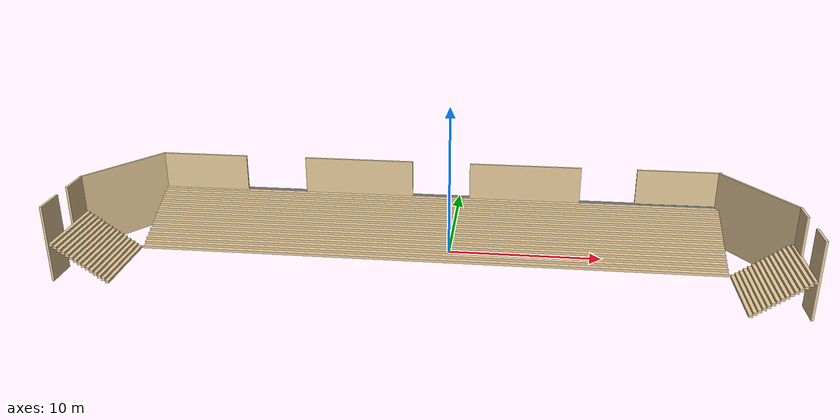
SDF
<?xml version='1.0'?>
<sdf version='1.7'>
  <model name='playground'>
    <pose>-1.37832 -1.5894 0 0 -0 0</pose>
    <link name='Floor_0'>
      <pose>0.02132 5.0789 2.5 0 -0 0</pose>
      <visual name='Floor_0_Visual_0'>
        <pose>-19.1226 0 0.05 0 -0 0</pose>
        <geometry>
          <box>
            <size>0.024505 0.281392 0.1</size>
          </box>
        </geometry>
        <material>
          <script>
            <uri>file://media/materials/scripts/gazebo.material</uri>
            <name>Gazebo/Grey</name>
          </script>
          <ambient>1 1 1 1</ambient>
        </material>
        <meta>
          <layer>1</layer>
        </meta>
      </visual>
      <collision name='Floor_0_Collision_0'>
        <geometry>
          <box>
            <size>0.024505 0.281392 0.1</size>
          </box>
        </geometry>
        <pose>-19.1226 0 0.05 0 -0 0</pose>
      </collision>
      <visual name='Floor_0_Visual_1'>
        <pose>0.012253 0.046116 0.05 0 -0 0</pose>
        <geometry>
          <box>
            <size>38.2452 0.18916 0.1</size>
          </box>
        </geometry>
        <material>
          <script>
            <uri>file://media/materials/scripts/gazebo.material</uri>
            <name>Gazebo/Grey</name>
          </script>
          <ambient>1 1 1 1</ambient>
        </material>
        <meta>
          <layer>1</layer>
        </meta>
      </visual>
      <collision name='Floor_0_Collision_1'>
        <geometry>
          <box>
            <size>38.2452 0.18916 0.1</size>
          </box>
        </geometry>
        <pose>0.012253 0.046116 0.05 0 -0 0</pose>
      </collision>
    </link>
    <link name='Stairs_0'>
      <visual name='Stairs_0_Visual_0'>
        <pose>0.043951 0.097538 0.083333 0 -0 -3.14159</pose>
        <geometry>
          <box>
            <size>38.266 0.3402 0.166667</size>
          </box>
        </geometry>
        <material>
          <script>
            <uri>file://media/materials/scripts/gazebo.material</uri>
            <name>Gazebo/Grey</name>
          </script>
          <ambient>0.921569 0.807843 0.615686 1</ambient>
        </material>
        <meta>
          <layer>0</layer>
        </meta>
      </visual>
      <collision name='Stairs_0_Collision_0'>
        <geometry>
          <box>
            <size>38.266 0.3402 0.166667</size>
          </box>
        </geometry>
        <pose>0.043951 0.097538 0.083333 0 -0 -3.14159</pose>
      </collision>
      <visual name='Stairs_0_Visual_1'>
        <pose>0.043951 0.437738 0.25 0 -0 -3.14159</pose>
        <geometry>
          <box>
            <size>38.266 0.3402 0.166667</size>
          </box>
        </geometry>
        <material>
          <script>
            <uri>file://media/materials/scripts/gazebo.material</uri>
            <name>Gazebo/Grey</name>
          </script>
          <ambient>0.921569 0.807843 0.615686 1</ambient>
        </material>
        <meta>
          <layer>0</layer>
        </meta>
      </visual>
      <collision name='Stairs_0_Collision_1'>
        <geometry>
          <box>
            <size>38.266 0.3402 0.166667</size>
          </box>
        </geometry>
        <pose>0.043951 0.437738 0.25 0 -0 -3.14159</pose>
      </collision>
      <visual name='Stairs_0_Visual_2'>
        <pose>0.043951 0.777938 0.416667 0 -0 -3.14159</pose>
        <geometry>
          <box>
            <size>38.266 0.3402 0.166667</size>
          </box>
        </geometry>
        <material>
          <script>
            <uri>file://media/materials/scripts/gazebo.material</uri>
            <name>Gazebo/Grey</name>
          </script>
          <ambient>0.921569 0.807843 0.615686 1</ambient>
        </material>
        <meta>
          <layer>0</layer>
        </meta>
      </visual>
      <collision name='Stairs_0_Collision_2'>
        <geometry>
          <box>
            <size>38.266 0.3402 0.166667</size>
          </box>
        </geometry>
        <pose>0.043951 0.777938 0.416667 0 -0 -3.14159</pose>
      </collision>
      <visual name='Stairs_0_Visual_3'>
        <pose>0.043951 1.11814 0.583333 0 -0 -3.14159</pose>
        <geometry>
          <box>
            <size>38.266 0.3402 0.166667</size>
          </box>
        </geometry>
        <material>
          <script>
            <uri>file://media/materials/scripts/gazebo.material</uri>
            <name>Gazebo/Grey</name>
          </script>
          <ambient>0.921569 0.807843 0.615686 1</ambient>
        </material>
        <meta>
          <layer>0</layer>
        </meta>
      </visual>
      <collision name='Stairs_0_Collision_3'>
        <geometry>
          <box>
            <size>38.266 0.3402 0.166667</size>
          </box>
        </geometry>
        <pose>0.043951 1.11814 0.583333 0 -0 -3.14159</pose>
      </collision>
      <visual name='Stairs_0_Visual_4'>
        <pose>0.043951 1.45834 0.75 0 -0 -3.14159</pose>
        <geometry>
          <box>
            <size>38.266 0.3402 0.166667</size>
          </box>
        </geometry>
        <material>
          <script>
            <uri>file://media/materials/scripts/gazebo.material</uri>
            <name>Gazebo/Grey</name>
          </script>
          <ambient>0.921569 0.807843 0.615686 1</ambient>
        </material>
        <meta>
          <layer>0</layer>
        </meta>
      </visual>
      <collision name='Stairs_0_Collision_4'>
        <geometry>
          <box>
            <size>38.266 0.3402 0.166667</size>
          </box>
        </geometry>
        <pose>0.043951 1.45834 0.75 0 -0 -3.14159</pose>
      </collision>
      <visual name='Stairs_0_Visual_5'>
        <pose>0.043951 1.79854 0.916667 0 -0 -3.14159</pose>
        <geometry>
          <box>
            <size>38.266 0.3402 0.166667</size>
          </box>
        </geometry>
        <material>
          <script>
            <uri>file://media/materials/scripts/gazebo.material</uri>
            <name>Gazebo/Grey</name>
          </script>
          <ambient>0.921569 0.807843 0.615686 1</ambient>
        </material>
        <meta>
          <layer>0</layer>
        </meta>
      </visual>
      <collision name='Stairs_0_Collision_5'>
        <geometry>
          <box>
            <size>38.266 0.3402 0.166667</size>
          </box>
        </geometry>
        <pose>0.043951 1.79854 0.916667 0 -0 -3.14159</pose>
      </collision>
      <visual name='Stairs_0_Visual_6'>
        <pose>0.043951 2.13874 1.08333 0 -0 -3.14159</pose>
        <geometry>
          <box>
            <size>38.266 0.3402 0.166667</size>
          </box>
        </geometry>
        <material>
          <script>
            <uri>file://media/materials/scripts/gazebo.material</uri>
            <name>Gazebo/Grey</name>
          </script>
          <ambient>0.921569 0.807843 0.615686 1</ambient>
        </material>
        <meta>
          <layer>0</layer>
        </meta>
      </visual>
      <collision name='Stairs_0_Collision_6'>
        <geometry>
          <box>
            <size>38.266 0.3402 0.166667</size>
          </box>
        </geometry>
        <pose>0.043951 2.13874 1.08333 0 -0 -3.14159</pose>
      </collision>
      <visual name='Stairs_0_Visual_7'>
        <pose>0.043951 2.47894 1.25 0 -0 -3.14159</pose>
        <geometry>
          <box>
            <size>38.266 0.3402 0.166667</size>
          </box>
        </geometry>
        <material>
          <script>
            <uri>file://media/materials/scripts/gazebo.material</uri>
            <name>Gazebo/Grey</name>
          </script>
          <ambient>0.921569 0.807843 0.615686 1</ambient>
        </material>
        <meta>
          <layer>0</layer>
        </meta>
      </visual>
      <collision name='Stairs_0_Collision_7'>
        <geometry>
          <box>
            <size>38.266 0.3402 0.166667</size>
          </box>
        </geometry>
        <pose>0.043951 2.47894 1.25 0 -0 -3.14159</pose>
      </collision>
      <visual name='Stairs_0_Visual_8'>
        <pose>0.043951 2.81914 1.41667 0 -0 -3.14159</pose>
        <geometry>
          <box>
            <size>38.266 0.3402 0.166667</size>
          </box>
        </geometry>
        <material>
          <script>
            <uri>file://media/materials/scripts/gazebo.material</uri>
            <name>Gazebo/Grey</name>
          </script>
          <ambient>0.921569 0.807843 0.615686 1</ambient>
        </material>
        <meta>
          <layer>0</layer>
        </meta>
      </visual>
      <collision name='Stairs_0_Collision_8'>
        <geometry>
          <box>
            <size>38.266 0.3402 0.166667</size>
          </box>
        </geometry>
        <pose>0.043951 2.81914 1.41667 0 -0 -3.14159</pose>
      </collision>
      <visual name='Stairs_0_Visual_9'>
        <pose>0.043951 3.15934 1.58333 0 -0 -3.14159</pose>
        <geometry>
          <box>
            <size>38.266 0.3402 0.166667</size>
          </box>
        </geometry>
        <material>
          <script>
            <uri>file://media/materials/scripts/gazebo.material</uri>
            <name>Gazebo/Grey</name>
          </script>
          <ambient>0.921569 0.807843 0.615686 1</ambient>
        </material>
        <meta>
          <layer>0</layer>
        </meta>
      </visual>
      <collision name='Stairs_0_Collision_9'>
        <geometry>
          <box>
            <size>38.266 0.3402 0.166667</size>
          </box>
        </geometry>
        <pose>0.043951 3.15934 1.58333 0 -0 -3.14159</pose>
      </collision>
      <visual name='Stairs_0_Visual_10'>
        <pose>0.043951 3.49954 1.75 0 -0 -3.14159</pose>
        <geometry>
          <box>
            <size>38.266 0.3402 0.166667</size>
          </box>
        </geometry>
        <material>
          <script>
            <uri>file://media/materials/scripts/gazebo.material</uri>
            <name>Gazebo/Grey</name>
          </script>
          <ambient>0.921569 0.807843 0.615686 1</ambient>
        </material>
        <meta>
          <layer>0</layer>
        </meta>
      </visual>
      <collision name='Stairs_0_Collision_10'>
        <geometry>
          <box>
            <size>38.266 0.3402 0.166667</size>
          </box>
        </geometry>
        <pose>0.043951 3.49954 1.75 0 -0 -3.14159</pose>
      </collision>
      <visual name='Stairs_0_Visual_11'>
        <pose>0.043951 3.83974 1.91667 0 -0 -3.14159</pose>
        <geometry>
          <box>
            <size>38.266 0.3402 0.166667</size>
          </box>
        </geometry>
        <material>
          <script>
            <uri>file://media/materials/scripts/gazebo.material</uri>
            <name>Gazebo/Grey</name>
          </script>
          <ambient>0.921569 0.807843 0.615686 1</ambient>
        </material>
        <meta>
          <layer>0</layer>
        </meta>
      </visual>
      <collision name='Stairs_0_Collision_11'>
        <geometry>
          <box>
            <size>38.266 0.3402 0.166667</size>
          </box>
        </geometry>
        <pose>0.043951 3.83974 1.91667 0 -0 -3.14159</pose>
      </collision>
      <visual name='Stairs_0_Visual_12'>
        <pose>0.043951 4.17994 2.08333 0 -0 -3.14159</pose>
        <geometry>
          <box>
            <size>38.266 0.3402 0.166667</size>
          </box>
        </geometry>
        <material>
          <script>
            <uri>file://media/materials/scripts/gazebo.material</uri>
            <name>Gazebo/Grey</name>
          </script>
          <ambient>0.921569 0.807843 0.615686 1</ambient>
        </material>
        <meta>
          <layer>0</layer>
        </meta>
      </visual>
      <collision name='Stairs_0_Collision_12'>
        <geometry>
          <box>
            <size>38.266 0.3402 0.166667</size>
          </box>
        </geometry>
        <pose>0.043951 4.17994 2.08333 0 -0 -3.14159</pose>
      </collision>
      <visual name='Stairs_0_Visual_13'>
        <pose>0.043951 4.52014 2.25 0 -0 -3.14159</pose>
        <geometry>
          <box>
            <size>38.266 0.3402 0.166667</size>
          </box>
        </geometry>
        <material>
          <script>
            <uri>file://media/materials/scripts/gazebo.material</uri>
            <name>Gazebo/Grey</name>
          </script>
          <ambient>0.921569 0.807843 0.615686 1</ambient>
        </material>
        <meta>
          <layer>0</layer>
        </meta>
      </visual>
      <collision name='Stairs_0_Collision_13'>
        <geometry>
          <box>
            <size>38.266 0.3402 0.166667</size>
          </box>
        </geometry>
        <pose>0.043951 4.52014 2.25 0 -0 -3.14159</pose>
      </collision>
      <visual name='Stairs_0_Visual_14'>
        <pose>0.043951 4.86034 2.41667 0 -0 -3.14159</pose>
        <geometry>
          <box>
            <size>38.266 0.3402 0.166667</size>
          </box>
        </geometry>
        <material>
          <script>
            <uri>file://media/materials/scripts/gazebo.material</uri>
            <name>Gazebo/Grey</name>
          </script>
          <ambient>0.921569 0.807843 0.615686 1</ambient>
        </material>
        <meta>
          <layer>0</layer>
        </meta>
      </visual>
      <collision name='Stairs_0_Collision_14'>
        <geometry>
          <box>
            <size>38.266 0.3402 0.166667</size>
          </box>
        </geometry>
        <pose>0.043951 4.86034 2.41667 0 -0 -3.14159</pose>
      </collision>
    </link>
    <link name='Stairs_1'>
      <visual name='Stairs_1_Visual_0'>
        <pose>-19.291 -2.59066 0.083333 0 -0 -1.5708</pose>
        <geometry>
          <box>
            <size>5.109 0.233333 0.166667</size>
          </box>
        </geometry>
        <material>
          <script>
            <uri>file://media/materials/scripts/gazebo.material</uri>
            <name>Gazebo/Grey</name>
          </script>
          <ambient>0.921569 0.807843 0.615686 1</ambient>
        </material>
        <meta>
          <layer>0</layer>
        </meta>
      </visual>
      <collision name='Stairs_1_Collision_0'>
        <geometry>
          <box>
            <size>5.109 0.233333 0.166667</size>
          </box>
        </geometry>
        <pose>-19.291 -2.59066 0.083333 0 -0 -1.5708</pose>
      </collision>
      <visual name='Stairs_1_Visual_1'>
        <pose>-19.5243 -2.59066 0.25 0 -0 -1.5708</pose>
        <geometry>
          <box>
            <size>5.109 0.233333 0.166667</size>
          </box>
        </geometry>
        <material>
          <script>
            <uri>file://media/materials/scripts/gazebo.material</uri>
            <name>Gazebo/Grey</name>
          </script>
          <ambient>0.921569 0.807843 0.615686 1</ambient>
        </material>
        <meta>
          <layer>0</layer>
        </meta>
      </visual>
      <collision name='Stairs_1_Collision_1'>
        <geometry>
          <box>
            <size>5.109 0.233333 0.166667</size>
          </box>
        </geometry>
        <pose>-19.5243 -2.59066 0.25 0 -0 -1.5708</pose>
      </collision>
      <visual name='Stairs_1_Visual_2'>
        <pose>-19.7576 -2.59066 0.416667 0 -0 -1.5708</pose>
        <geometry>
          <box>
            <size>5.109 0.233333 0.166667</size>
          </box>
        </geometry>
        <material>
          <script>
            <uri>file://media/materials/scripts/gazebo.material</uri>
            <name>Gazebo/Grey</name>
          </script>
          <ambient>0.921569 0.807843 0.615686 1</ambient>
        </material>
        <meta>
          <layer>0</layer>
        </meta>
      </visual>
      <collision name='Stairs_1_Collision_2'>
        <geometry>
          <box>
            <size>5.109 0.233333 0.166667</size>
          </box>
        </geometry>
        <pose>-19.7576 -2.59066 0.416667 0 -0 -1.5708</pose>
      </collision>
      <visual name='Stairs_1_Visual_3'>
        <pose>-19.991 -2.59066 0.583333 0 -0 -1.5708</pose>
        <geometry>
          <box>
            <size>5.109 0.233333 0.166667</size>
          </box>
        </geometry>
        <material>
          <script>
            <uri>file://media/materials/scripts/gazebo.material</uri>
            <name>Gazebo/Grey</name>
          </script>
          <ambient>0.921569 0.807843 0.615686 1</ambient>
        </material>
        <meta>
          <layer>0</layer>
        </meta>
      </visual>
      <collision name='Stairs_1_Collision_3'>
        <geometry>
          <box>
            <size>5.109 0.233333 0.166667</size>
          </box>
        </geometry>
        <pose>-19.991 -2.59066 0.583333 0 -0 -1.5708</pose>
      </collision>
      <visual name='Stairs_1_Visual_4'>
        <pose>-20.2243 -2.59066 0.75 0 -0 -1.5708</pose>
        <geometry>
          <box>
            <size>5.109 0.233333 0.166667</size>
          </box>
        </geometry>
        <material>
          <script>
            <uri>file://media/materials/scripts/gazebo.material</uri>
            <name>Gazebo/Grey</name>
          </script>
          <ambient>0.921569 0.807843 0.615686 1</ambient>
        </material>
        <meta>
          <layer>0</layer>
        </meta>
      </visual>
      <collision name='Stairs_1_Collision_4'>
        <geometry>
          <box>
            <size>5.109 0.233333 0.166667</size>
          </box>
        </geometry>
        <pose>-20.2243 -2.59066 0.75 0 -0 -1.5708</pose>
      </collision>
      <visual name='Stairs_1_Visual_5'>
        <pose>-20.4576 -2.59066 0.916667 0 -0 -1.5708</pose>
        <geometry>
          <box>
            <size>5.109 0.233333 0.166667</size>
          </box>
        </geometry>
        <material>
          <script>
            <uri>file://media/materials/scripts/gazebo.material</uri>
            <name>Gazebo/Grey</name>
          </script>
          <ambient>0.921569 0.807843 0.615686 1</ambient>
        </material>
        <meta>
          <layer>0</layer>
        </meta>
      </visual>
      <collision name='Stairs_1_Collision_5'>
        <geometry>
          <box>
            <size>5.109 0.233333 0.166667</size>
          </box>
        </geometry>
        <pose>-20.4576 -2.59066 0.916667 0 -0 -1.5708</pose>
      </collision>
      <visual name='Stairs_1_Visual_6'>
        <pose>-20.691 -2.59066 1.08333 0 -0 -1.5708</pose>
        <geometry>
          <box>
            <size>5.109 0.233333 0.166667</size>
          </box>
        </geometry>
        <material>
          <script>
            <uri>file://media/materials/scripts/gazebo.material</uri>
            <name>Gazebo/Grey</name>
          </script>
          <ambient>0.921569 0.807843 0.615686 1</ambient>
        </material>
        <meta>
          <layer>0</layer>
        </meta>
      </visual>
      <collision name='Stairs_1_Collision_6'>
        <geometry>
          <box>
            <size>5.109 0.233333 0.166667</size>
          </box>
        </geometry>
        <pose>-20.691 -2.59066 1.08333 0 -0 -1.5708</pose>
      </collision>
      <visual name='Stairs_1_Visual_7'>
        <pose>-20.9243 -2.59066 1.25 0 -0 -1.5708</pose>
        <geometry>
          <box>
            <size>5.109 0.233333 0.166667</size>
          </box>
        </geometry>
        <material>
          <script>
            <uri>file://media/materials/scripts/gazebo.material</uri>
            <name>Gazebo/Grey</name>
          </script>
          <ambient>0.921569 0.807843 0.615686 1</ambient>
        </material>
        <meta>
          <layer>0</layer>
        </meta>
      </visual>
      <collision name='Stairs_1_Collision_7'>
        <geometry>
          <box>
            <size>5.109 0.233333 0.166667</size>
          </box>
        </geometry>
        <pose>-20.9243 -2.59066 1.25 0 -0 -1.5708</pose>
      </collision>
      <visual name='Stairs_1_Visual_8'>
        <pose>-21.1576 -2.59066 1.41667 0 -0 -1.5708</pose>
        <geometry>
          <box>
            <size>5.109 0.233333 0.166667</size>
          </box>
        </geometry>
        <material>
          <script>
            <uri>file://media/materials/scripts/gazebo.material</uri>
            <name>Gazebo/Grey</name>
          </script>
          <ambient>0.921569 0.807843 0.615686 1</ambient>
        </material>
        <meta>
          <layer>0</layer>
        </meta>
      </visual>
      <collision name='Stairs_1_Collision_8'>
        <geometry>
          <box>
            <size>5.109 0.233333 0.166667</size>
          </box>
        </geometry>
        <pose>-21.1576 -2.59066 1.41667 0 -0 -1.5708</pose>
      </collision>
      <visual name='Stairs_1_Visual_9'>
        <pose>-21.391 -2.59066 1.58333 0 -0 -1.5708</pose>
        <geometry>
          <box>
            <size>5.109 0.233333 0.166667</size>
          </box>
        </geometry>
        <material>
          <script>
            <uri>file://media/materials/scripts/gazebo.material</uri>
            <name>Gazebo/Grey</name>
          </script>
          <ambient>0.921569 0.807843 0.615686 1</ambient>
        </material>
        <meta>
          <layer>0</layer>
        </meta>
      </visual>
      <collision name='Stairs_1_Collision_9'>
        <geometry>
          <box>
            <size>5.109 0.233333 0.166667</size>
          </box>
        </geometry>
        <pose>-21.391 -2.59066 1.58333 0 -0 -1.5708</pose>
      </collision>
      <visual name='Stairs_1_Visual_10'>
        <pose>-21.6243 -2.59066 1.75 0 -0 -1.5708</pose>
        <geometry>
          <box>
            <size>5.109 0.233333 0.166667</size>
          </box>
        </geometry>
        <material>
          <script>
            <uri>file://media/materials/scripts/gazebo.material</uri>
            <name>Gazebo/Grey</name>
          </script>
          <ambient>0.921569 0.807843 0.615686 1</ambient>
        </material>
        <meta>
          <layer>0</layer>
        </meta>
      </visual>
      <collision name='Stairs_1_Collision_10'>
        <geometry>
          <box>
            <size>5.109 0.233333 0.166667</size>
          </box>
        </geometry>
        <pose>-21.6243 -2.59066 1.75 0 -0 -1.5708</pose>
      </collision>
      <visual name='Stairs_1_Visual_11'>
        <pose>-21.8576 -2.59066 1.91667 0 -0 -1.5708</pose>
        <geometry>
          <box>
            <size>5.109 0.233333 0.166667</size>
          </box>
        </geometry>
        <material>
          <script>
            <uri>file://media/materials/scripts/gazebo.material</uri>
            <name>Gazebo/Grey</name>
          </script>
          <ambient>0.921569 0.807843 0.615686 1</ambient>
        </material>
        <meta>
          <layer>0</layer>
        </meta>
      </visual>
      <collision name='Stairs_1_Collision_11'>
        <geometry>
          <box>
            <size>5.109 0.233333 0.166667</size>
          </box>
        </geometry>
        <pose>-21.8576 -2.59066 1.91667 0 -0 -1.5708</pose>
      </collision>
      <visual name='Stairs_1_Visual_12'>
        <pose>-22.091 -2.59066 2.08333 0 -0 -1.5708</pose>
        <geometry>
          <box>
            <size>5.109 0.233333 0.166667</size>
          </box>
        </geometry>
        <material>
          <script>
            <uri>file://media/materials/scripts/gazebo.material</uri>
            <name>Gazebo/Grey</name>
          </script>
          <ambient>0.921569 0.807843 0.615686 1</ambient>
        </material>
        <meta>
          <layer>0</layer>
        </meta>
      </visual>
      <collision name='Stairs_1_Collision_12'>
        <geometry>
          <box>
            <size>5.109 0.233333 0.166667</size>
          </box>
        </geometry>
        <pose>-22.091 -2.59066 2.08333 0 -0 -1.5708</pose>
      </collision>
      <visual name='Stairs_1_Visual_13'>
        <pose>-22.3243 -2.59066 2.25 0 -0 -1.5708</pose>
        <geometry>
          <box>
            <size>5.109 0.233333 0.166667</size>
          </box>
        </geometry>
        <material>
          <script>
            <uri>file://media/materials/scripts/gazebo.material</uri>
            <name>Gazebo/Grey</name>
          </script>
          <ambient>0.921569 0.807843 0.615686 1</ambient>
        </material>
        <meta>
          <layer>0</layer>
        </meta>
      </visual>
      <collision name='Stairs_1_Collision_13'>
        <geometry>
          <box>
            <size>5.109 0.233333 0.166667</size>
          </box>
        </geometry>
        <pose>-22.3243 -2.59066 2.25 0 -0 -1.5708</pose>
      </collision>
      <visual name='Stairs_1_Visual_14'>
        <pose>-22.5576 -2.59066 2.41667 0 -0 -1.5708</pose>
        <geometry>
          <box>
            <size>5.109 0.233333 0.166667</size>
          </box>
        </geometry>
        <material>
          <script>
            <uri>file://media/materials/scripts/gazebo.material</uri>
            <name>Gazebo/Grey</name>
          </script>
          <ambient>0.921569 0.807843 0.615686 1</ambient>
        </material>
        <meta>
          <layer>0</layer>
        </meta>
      </visual>
      <collision name='Stairs_1_Collision_14'>
        <geometry>
          <box>
            <size>5.109 0.233333 0.166667</size>
          </box>
        </geometry>
        <pose>-22.5576 -2.59066 2.41667 0 -0 -1.5708</pose>
      </collision>
    </link>
    <link name='Stairs_2'>
      <visual name='Stairs_2_Visual_0'>
        <pose>19.3588 -2.57805 0.083333 0 -0 1.5708</pose>
        <geometry>
          <box>
            <size>5.03008 0.233333 0.166667</size>
          </box>
        </geometry>
        <material>
          <script>
            <uri>file://media/materials/scripts/gazebo.material</uri>
            <name>Gazebo/Grey</name>
          </script>
          <ambient>0.921569 0.807843 0.615686 1</ambient>
        </material>
        <meta>
          <layer>0</layer>
        </meta>
      </visual>
      <collision name='Stairs_2_Collision_0'>
        <geometry>
          <box>
            <size>5.03008 0.233333 0.166667</size>
          </box>
        </geometry>
        <pose>19.3588 -2.57805 0.083333 0 -0 1.5708</pose>
      </collision>
      <visual name='Stairs_2_Visual_1'>
        <pose>19.5921 -2.57805 0.25 0 -0 1.5708</pose>
        <geometry>
          <box>
            <size>5.03008 0.233333 0.166667</size>
          </box>
        </geometry>
        <material>
          <script>
            <uri>file://media/materials/scripts/gazebo.material</uri>
            <name>Gazebo/Grey</name>
          </script>
          <ambient>0.921569 0.807843 0.615686 1</ambient>
        </material>
        <meta>
          <layer>0</layer>
        </meta>
      </visual>
      <collision name='Stairs_2_Collision_1'>
        <geometry>
          <box>
            <size>5.03008 0.233333 0.166667</size>
          </box>
        </geometry>
        <pose>19.5921 -2.57805 0.25 0 -0 1.5708</pose>
      </collision>
      <visual name='Stairs_2_Visual_2'>
        <pose>19.8255 -2.57805 0.416667 0 -0 1.5708</pose>
        <geometry>
          <box>
            <size>5.03008 0.233333 0.166667</size>
          </box>
        </geometry>
        <material>
          <script>
            <uri>file://media/materials/scripts/gazebo.material</uri>
            <name>Gazebo/Grey</name>
          </script>
          <ambient>0.921569 0.807843 0.615686 1</ambient>
        </material>
        <meta>
          <layer>0</layer>
        </meta>
      </visual>
      <collision name='Stairs_2_Collision_2'>
        <geometry>
          <box>
            <size>5.03008 0.233333 0.166667</size>
          </box>
        </geometry>
        <pose>19.8255 -2.57805 0.416667 0 -0 1.5708</pose>
      </collision>
      <visual name='Stairs_2_Visual_3'>
        <pose>20.0588 -2.57805 0.583333 0 -0 1.5708</pose>
        <geometry>
          <box>
            <size>5.03008 0.233333 0.166667</size>
          </box>
        </geometry>
        <material>
          <script>
            <uri>file://media/materials/scripts/gazebo.material</uri>
            <name>Gazebo/Grey</name>
          </script>
          <ambient>0.921569 0.807843 0.615686 1</ambient>
        </material>
        <meta>
          <layer>0</layer>
        </meta>
      </visual>
      <collision name='Stairs_2_Collision_3'>
        <geometry>
          <box>
            <size>5.03008 0.233333 0.166667</size>
          </box>
        </geometry>
        <pose>20.0588 -2.57805 0.583333 0 -0 1.5708</pose>
      </collision>
      <visual name='Stairs_2_Visual_4'>
        <pose>20.2921 -2.57805 0.75 0 -0 1.5708</pose>
        <geometry>
          <box>
            <size>5.03008 0.233333 0.166667</size>
          </box>
        </geometry>
        <material>
          <script>
            <uri>file://media/materials/scripts/gazebo.material</uri>
            <name>Gazebo/Grey</name>
          </script>
          <ambient>0.921569 0.807843 0.615686 1</ambient>
        </material>
        <meta>
          <layer>0</layer>
        </meta>
      </visual>
      <collision name='Stairs_2_Collision_4'>
        <geometry>
          <box>
            <size>5.03008 0.233333 0.166667</size>
          </box>
        </geometry>
        <pose>20.2921 -2.57805 0.75 0 -0 1.5708</pose>
      </collision>
      <visual name='Stairs_2_Visual_5'>
        <pose>20.5255 -2.57805 0.916667 0 -0 1.5708</pose>
        <geometry>
          <box>
            <size>5.03008 0.233333 0.166667</size>
          </box>
        </geometry>
        <material>
          <script>
            <uri>file://media/materials/scripts/gazebo.material</uri>
            <name>Gazebo/Grey</name>
          </script>
          <ambient>0.921569 0.807843 0.615686 1</ambient>
        </material>
        <meta>
          <layer>0</layer>
        </meta>
      </visual>
      <collision name='Stairs_2_Collision_5'>
        <geometry>
          <box>
            <size>5.03008 0.233333 0.166667</size>
          </box>
        </geometry>
        <pose>20.5255 -2.57805 0.916667 0 -0 1.5708</pose>
      </collision>
      <visual name='Stairs_2_Visual_6'>
        <pose>20.7588 -2.57805 1.08333 0 -0 1.5708</pose>
        <geometry>
          <box>
            <size>5.03008 0.233333 0.166667</size>
          </box>
        </geometry>
        <material>
          <script>
            <uri>file://media/materials/scripts/gazebo.material</uri>
            <name>Gazebo/Grey</name>
          </script>
          <ambient>0.921569 0.807843 0.615686 1</ambient>
        </material>
        <meta>
          <layer>0</layer>
        </meta>
      </visual>
      <collision name='Stairs_2_Collision_6'>
        <geometry>
          <box>
            <size>5.03008 0.233333 0.166667</size>
          </box>
        </geometry>
        <pose>20.7588 -2.57805 1.08333 0 -0 1.5708</pose>
      </collision>
      <visual name='Stairs_2_Visual_7'>
        <pose>20.9921 -2.57805 1.25 0 -0 1.5708</pose>
        <geometry>
          <box>
            <size>5.03008 0.233333 0.166667</size>
          </box>
        </geometry>
        <material>
          <script>
            <uri>file://media/materials/scripts/gazebo.material</uri>
            <name>Gazebo/Grey</name>
          </script>
          <ambient>0.921569 0.807843 0.615686 1</ambient>
        </material>
        <meta>
          <layer>0</layer>
        </meta>
      </visual>
      <collision name='Stairs_2_Collision_7'>
        <geometry>
          <box>
            <size>5.03008 0.233333 0.166667</size>
          </box>
        </geometry>
        <pose>20.9921 -2.57805 1.25 0 -0 1.5708</pose>
      </collision>
      <visual name='Stairs_2_Visual_8'>
        <pose>21.2255 -2.57805 1.41667 0 -0 1.5708</pose>
        <geometry>
          <box>
            <size>5.03008 0.233333 0.166667</size>
          </box>
        </geometry>
        <material>
          <script>
            <uri>file://media/materials/scripts/gazebo.material</uri>
            <name>Gazebo/Grey</name>
          </script>
          <ambient>0.921569 0.807843 0.615686 1</ambient>
        </material>
        <meta>
          <layer>0</layer>
        </meta>
      </visual>
      <collision name='Stairs_2_Collision_8'>
        <geometry>
          <box>
            <size>5.03008 0.233333 0.166667</size>
          </box>
        </geometry>
        <pose>21.2255 -2.57805 1.41667 0 -0 1.5708</pose>
      </collision>
      <visual name='Stairs_2_Visual_9'>
        <pose>21.4588 -2.57805 1.58333 0 -0 1.5708</pose>
        <geometry>
          <box>
            <size>5.03008 0.233333 0.166667</size>
          </box>
        </geometry>
        <material>
          <script>
            <uri>file://media/materials/scripts/gazebo.material</uri>
            <name>Gazebo/Grey</name>
          </script>
          <ambient>0.921569 0.807843 0.615686 1</ambient>
        </material>
        <meta>
          <layer>0</layer>
        </meta>
      </visual>
      <collision name='Stairs_2_Collision_9'>
        <geometry>
          <box>
            <size>5.03008 0.233333 0.166667</size>
          </box>
        </geometry>
        <pose>21.4588 -2.57805 1.58333 0 -0 1.5708</pose>
      </collision>
      <visual name='Stairs_2_Visual_10'>
        <pose>21.6921 -2.57805 1.75 0 -0 1.5708</pose>
        <geometry>
          <box>
            <size>5.03008 0.233333 0.166667</size>
          </box>
        </geometry>
        <material>
          <script>
            <uri>file://media/materials/scripts/gazebo.material</uri>
            <name>Gazebo/Grey</name>
          </script>
          <ambient>0.921569 0.807843 0.615686 1</ambient>
        </material>
        <meta>
          <layer>0</layer>
        </meta>
      </visual>
      <collision name='Stairs_2_Collision_10'>
        <geometry>
          <box>
            <size>5.03008 0.233333 0.166667</size>
          </box>
        </geometry>
        <pose>21.6921 -2.57805 1.75 0 -0 1.5708</pose>
      </collision>
      <visual name='Stairs_2_Visual_11'>
        <pose>21.9255 -2.57805 1.91667 0 -0 1.5708</pose>
        <geometry>
          <box>
            <size>5.03008 0.233333 0.166667</size>
          </box>
        </geometry>
        <material>
          <script>
            <uri>file://media/materials/scripts/gazebo.material</uri>
            <name>Gazebo/Grey</name>
          </script>
          <ambient>0.921569 0.807843 0.615686 1</ambient>
        </material>
        <meta>
          <layer>0</layer>
        </meta>
      </visual>
      <collision name='Stairs_2_Collision_11'>
        <geometry>
          <box>
            <size>5.03008 0.233333 0.166667</size>
          </box>
        </geometry>
        <pose>21.9255 -2.57805 1.91667 0 -0 1.5708</pose>
      </collision>
      <visual name='Stairs_2_Visual_12'>
        <pose>22.1588 -2.57805 2.08333 0 -0 1.5708</pose>
        <geometry>
          <box>
            <size>5.03008 0.233333 0.166667</size>
          </box>
        </geometry>
        <material>
          <script>
            <uri>file://media/materials/scripts/gazebo.material</uri>
            <name>Gazebo/Grey</name>
          </script>
          <ambient>0.921569 0.807843 0.615686 1</ambient>
        </material>
        <meta>
          <layer>0</layer>
        </meta>
      </visual>
      <collision name='Stairs_2_Collision_12'>
        <geometry>
          <box>
            <size>5.03008 0.233333 0.166667</size>
          </box>
        </geometry>
        <pose>22.1588 -2.57805 2.08333 0 -0 1.5708</pose>
      </collision>
      <visual name='Stairs_2_Visual_13'>
        <pose>22.3921 -2.57805 2.25 0 -0 1.5708</pose>
        <geometry>
          <box>
            <size>5.03008 0.233333 0.166667</size>
          </box>
        </geometry>
        <material>
          <script>
            <uri>file://media/materials/scripts/gazebo.material</uri>
            <name>Gazebo/Grey</name>
          </script>
          <ambient>0.921569 0.807843 0.615686 1</ambient>
        </material>
        <meta>
          <layer>0</layer>
        </meta>
      </visual>
      <collision name='Stairs_2_Collision_13'>
        <geometry>
          <box>
            <size>5.03008 0.233333 0.166667</size>
          </box>
        </geometry>
        <pose>22.3921 -2.57805 2.25 0 -0 1.5708</pose>
      </collision>
      <visual name='Stairs_2_Visual_14'>
        <pose>22.6255 -2.57805 2.41667 0 -0 1.5708</pose>
        <geometry>
          <box>
            <size>5.03008 0.233333 0.166667</size>
          </box>
        </geometry>
        <material>
          <script>
            <uri>file://media/materials/scripts/gazebo.material</uri>
            <name>Gazebo/Grey</name>
          </script>
          <ambient>0.921569 0.807843 0.615686 1</ambient>
        </material>
        <meta>
          <layer>0</layer>
        </meta>
      </visual>
      <collision name='Stairs_2_Collision_14'>
        <geometry>
          <box>
            <size>5.03008 0.233333 0.166667</size>
          </box>
        </geometry>
        <pose>22.6255 -2.57805 2.41667 0 -0 1.5708</pose>
      </collision>
    </link>
    <link name='Wall_0'>
      <collision name='Wall_0_Collision'>
        <geometry>
          <box>
            <size>38.2144 0.15 2.5</size>
          </box>
        </geometry>
        <pose>0 0 1.25 0 -0 0</pose>
      </collision>
      <visual name='Wall_0_Visual'>
        <pose>0 0 1.25 0 -0 0</pose>
        <geometry>
          <box>
            <size>38.2144 0.15 2.5</size>
          </box>
        </geometry>
        <material>
          <script>
            <uri>file://media/materials/scripts/gazebo.material</uri>
            <name>Gazebo/Grey</name>
          </script>
          <ambient>0.921569 0.807843 0.615686 1</ambient>
        </material>
        <meta>
          <layer>0</layer>
        </meta>
      </visual>
      <pose>0.00432 5.0434 0 0 -0 0</pose>
    </link>
    <link name='Wall_11'>
      <collision name='Wall_11_Collision'>
        <geometry>
          <box>
            <size>7.5 0.15 2.5</size>
          </box>
        </geometry>
        <pose>0 0 1.25 0 -0 0</pose>
      </collision>
      <visual name='Wall_11_Visual'>
        <pose>0 0 1.25 0 -0 0</pose>
        <geometry>
          <box>
            <size>7.5 0.15 2.5</size>
          </box>
        </geometry>
        <material>
          <script>
            <uri>file://media/materials/scripts/gazebo.material</uri>
            <name>Gazebo/Grey</name>
          </script>
          <ambient>0.921569 0.807843 0.615686 1</ambient>
        </material>
        <meta>
          <layer>1</layer>
        </meta>
      </visual>
      <pose>-5.19568 5.0904 2.5 0 -0 0</pose>
    </link>
    <link name='Wall_13'>
      <collision name='Wall_13_Collision'>
        <geometry>
          <box>
            <size>7.5 0.15 2.5</size>
          </box>
        </geometry>
        <pose>0 0 1.25 0 -0 0</pose>
      </collision>
      <visual name='Wall_13_Visual'>
        <pose>0 0 1.25 0 -0 0</pose>
        <geometry>
          <box>
            <size>7.5 0.15 2.5</size>
          </box>
        </geometry>
        <material>
          <script>
            <uri>file://media/materials/scripts/gazebo.material</uri>
            <name>Gazebo/Grey</name>
          </script>
          <ambient>0.921569 0.807843 0.615686 1</ambient>
        </material>
        <meta>
          <layer>1</layer>
        </meta>
      </visual>
      <pose>6.22532 5.0974 2.5 0 -0 0</pose>
    </link>
    <link name='Wall_15'>
      <collision name='Wall_15_Collision'>
        <geometry>
          <box>
            <size>5.5 0.15 2.5</size>
          </box>
        </geometry>
        <pose>0 0 1.25 0 -0 0</pose>
      </collision>
      <visual name='Wall_15_Visual'>
        <pose>0 0 1.25 0 -0 0</pose>
        <geometry>
          <box>
            <size>5.5 0.15 2.5</size>
          </box>
        </geometry>
        <material>
          <script>
            <uri>file://media/materials/scripts/gazebo.material</uri>
            <name>Gazebo/Grey</name>
          </script>
          <ambient>0.921569 0.807843 0.615686 1</ambient>
        </material>
        <meta>
          <layer>1</layer>
        </meta>
      </visual>
      <pose>16.4063 5.1444 2.5 0 -0 0</pose>
    </link>
    <link name='Wall_19'>
      <collision name='Wall_19_Collision'>
        <geometry>
          <box>
            <size>6 0.15 2.5</size>
          </box>
        </geometry>
        <pose>0 0 1.25 0 -0 0</pose>
      </collision>
      <visual name='Wall_19_Visual'>
        <pose>0 0 1.25 0 -0 0</pose>
        <geometry>
          <box>
            <size>6 0.15 2.5</size>
          </box>
        </geometry>
        <material>
          <script>
            <uri>file://media/materials/scripts/gazebo.material</uri>
            <name>Gazebo/Grey</name>
          </script>
          <ambient>0.921569 0.807843 0.615686 1</ambient>
        </material>
        <meta>
          <layer>1</layer>
        </meta>
      </visual>
      <pose>-16.1137 5.0134 2.5 0 -0 0</pose>
    </link>
    <link name='Wall_25'>
      <collision name='Wall_25_Collision'>
        <geometry>
          <box>
            <size>2 0.15 5</size>
          </box>
        </geometry>
        <pose>0 0 2.5 0 -0 0</pose>
      </collision>
      <visual name='Wall_25_Visual'>
        <pose>0 0 2.5 0 -0 0</pose>
        <geometry>
          <box>
            <size>2 0.15 5</size>
          </box>
        </geometry>
        <material>
          <script>
            <uri>file://media/materials/scripts/gazebo.material</uri>
            <name>Gazebo/Grey</name>
          </script>
          <ambient>0.921569 0.807843 0.615686 1</ambient>
        </material>
        <meta>
          <layer>0</layer>
        </meta>
      </visual>
      <pose>-22.7417 -4.2196 0 0 -0 -1.5708</pose>
    </link>
    <link name='Wall_27'>
      <collision name='Wall_27_Collision'>
        <geometry>
          <box>
            <size>1.5 0.15 5</size>
          </box>
        </geometry>
        <pose>0 0 2.5 0 -0 0</pose>
      </collision>
      <visual name='Wall_27_Visual'>
        <pose>0 0 2.5 0 -0 0</pose>
        <geometry>
          <box>
            <size>1.5 0.15 5</size>
          </box>
        </geometry>
        <material>
          <script>
            <uri>file://media/materials/scripts/gazebo.material</uri>
            <name>Gazebo/Grey</name>
          </script>
          <ambient>0.921569 0.807843 0.615686 1</ambient>
        </material>
        <meta>
          <layer>0</layer>
        </meta>
      </visual>
      <pose>22.7283 -1.0176 0 0 -0 -1.5708</pose>
    </link>
    <link name='Wall_29'>
      <collision name='Wall_29_Collision'>
        <geometry>
          <box>
            <size>2 0.15 5</size>
          </box>
        </geometry>
        <pose>0 0 2.5 0 -0 0</pose>
      </collision>
      <visual name='Wall_29_Visual'>
        <pose>0 0 2.5 0 -0 0</pose>
        <geometry>
          <box>
            <size>2 0.15 5</size>
          </box>
        </geometry>
        <material>
          <script>
            <uri>file://media/materials/scripts/gazebo.material</uri>
            <name>Gazebo/Grey</name>
          </script>
          <ambient>0.921569 0.807843 0.615686 1</ambient>
        </material>
        <meta>
          <layer>0</layer>
        </meta>
      </visual>
      <pose>-22.7417 -0.981598 0 0 -0 -1.5708</pose>
    </link>
    <link name='Wall_31'>
      <collision name='Wall_31_Collision'>
        <geometry>
          <box>
            <size>1.75 0.15 5</size>
          </box>
        </geometry>
        <pose>0 0 2.5 0 -0 0</pose>
      </collision>
      <visual name='Wall_31_Visual'>
        <pose>0 0 2.5 0 -0 0</pose>
        <geometry>
          <box>
            <size>1.75 0.15 5</size>
          </box>
        </geometry>
        <material>
          <script>
            <uri>file://media/materials/scripts/gazebo.material</uri>
            <name>Gazebo/Grey</name>
          </script>
          <ambient>0.921569 0.807843 0.615686 1</ambient>
        </material>
        <meta>
          <layer>0</layer>
        </meta>
      </visual>
      <pose>22.7715 -4.2098 0 0 -0 -1.5708</pose>
    </link>
    <link name='Wall_43'>
      <collision name='Wall_43_Collision'>
        <geometry>
          <box>
            <size>6.45902 0.15 5</size>
          </box>
        </geometry>
        <pose>0 0 2.5 0 -0 0</pose>
      </collision>
      <visual name='Wall_43_Visual'>
        <pose>0 0 2.5 0 -0 0</pose>
        <geometry>
          <box>
            <size>6.45902 0.15 5</size>
          </box>
        </geometry>
        <material>
          <script>
            <uri>file://media/materials/scripts/gazebo.material</uri>
            <name>Gazebo/Grey</name>
          </script>
          <ambient>0.921569 0.807843 0.615686 1</ambient>
        </material>
        <meta>
          <layer>0</layer>
        </meta>
      </visual>
      <pose>-20.8847 2.4934 0 0 -0 0.941371</pose>
    </link>
    <link name='Wall_45'>
      <collision name='Wall_45_Collision'>
        <geometry>
          <box>
            <size>6.67968 0.15 5</size>
          </box>
        </geometry>
        <pose>0 0 2.5 0 -0 0</pose>
      </collision>
      <visual name='Wall_45_Visual'>
        <pose>0 0 2.5 0 -0 0</pose>
        <geometry>
          <box>
            <size>6.67968 0.15 5</size>
          </box>
        </geometry>
        <material>
          <script>
            <uri>file://media/materials/scripts/gazebo.material</uri>
            <name>Gazebo/Grey</name>
          </script>
          <ambient>0.921569 0.807843 0.615686 1</ambient>
        </material>
        <meta>
          <layer>0</layer>
        </meta>
      </visual>
      <pose>20.8823 2.3504 0 0 -0 -0.969881</pose>
    </link>
    <static>1</static>
  </model>
</sdf>
